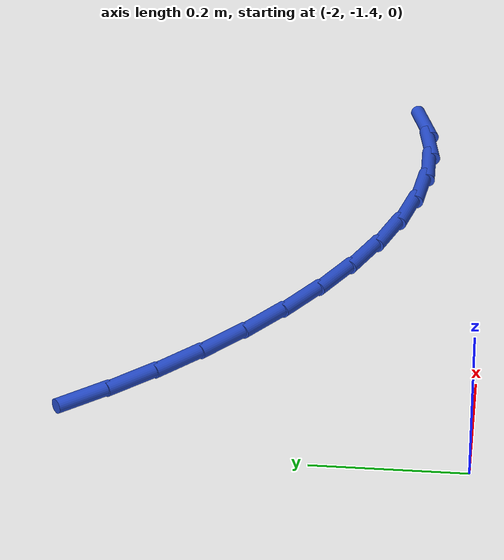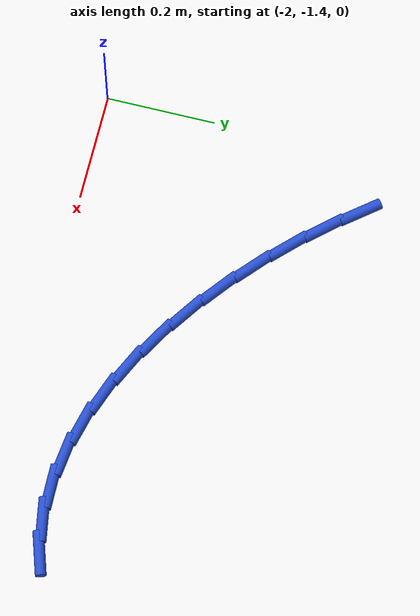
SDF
<sdf version="1.6">
 <world name="default">
  <model name="ground_plane">
   <static>1</static>
   <link name="link">
    <collision name="collision">
     <geometry><plane><normal>0 0 1</normal><size>100 100</size></plane></geometry>
     <surface><friction><ode><mu>100</mu><mu2>50</mu2></ode></friction></surface>
    </collision>
    <visual name="visual">
     <cast_shadows>0</cast_shadows>
     <geometry><plane><normal>0 0 1</normal><size>100 100</size></plane></geometry>
     <material>
      <script><uri>file://media/materials/scripts/gazebo.material</uri><name>Gazebo/WhiteGlow</name></script>
     </material>
    </visual>
   </link>
  </model>
  <model name="line">
   <link name="link_70">
    <pose>-1.8895390461482817 -0.903989645610609 0.01 0 1.57 -0.8922909289799934</pose>
    <collision name="collision">
     <geometry><cylinder><radius>0.01</radius><length>0.08</length></cylinder></geometry>
    </collision>
    <visual name="visual">
     <material>
      <script><name>Gazebo/Blue</name><uri>file://media/materials/scripts/gazebo.material</uri></script>
     </material>
     <geometry><cylinder><radius>0.01</radius><length>0.08</length></cylinder></geometry>
    </visual>
   </link>
   <link name="link_71">
    <pose>-1.8442132063884555 -0.9602117590820116 0.01 0 1.57 -0.8369559492550094</pose>
    <collision name="collision">
     <geometry><cylinder><radius>0.01</radius><length>0.08</length></cylinder></geometry>
    </collision>
    <visual name="visual">
     <material>
      <script><name>Gazebo/Blue</name><uri>file://media/materials/scripts/gazebo.material</uri></script>
     </material>
     <geometry><cylinder><radius>0.01</radius><length>0.08</length></cylinder></geometry>
    </visual>
   </link>
   <link name="link_72">
    <pose>-1.7951177419760063 -1.0146499229677792 0.01 0 1.57 -0.7813351497219727</pose>
    <collision name="collision">
     <geometry><cylinder><radius>0.01</radius><length>0.08</length></cylinder></geometry>
    </collision>
    <visual name="visual">
     <material>
      <script><name>Gazebo/Blue</name><uri>file://media/materials/scripts/gazebo.material</uri></script>
     </material>
     <geometry><cylinder><radius>0.01</radius><length>0.08</length></cylinder></geometry>
    </visual>
   </link>
   <link name="link_73">
    <pose>-1.7427157251807488 -1.0666278403294203 0.01 0 1.57 -0.7239167844364555</pose>
    <collision name="collision">
     <geometry><cylinder><radius>0.01</radius><length>0.08</length></cylinder></geometry>
    </collision>
    <visual name="visual">
     <material>
      <script><name>Gazebo/Blue</name><uri>file://media/materials/scripts/gazebo.material</uri></script>
     </material>
     <geometry><cylinder><radius>0.01</radius><length>0.08</length></cylinder></geometry>
    </visual>
   </link>
   <link name="link_74">
    <pose>-1.687482469653479 -1.115455230522717 0.01 0 1.57 -0.66314945334752</pose>
    <collision name="collision">
     <geometry><cylinder><radius>0.01</radius><length>0.08</length></cylinder></geometry>
    </collision>
    <visual name="visual">
     <material>
      <script><name>Gazebo/Blue</name><uri>file://media/materials/scripts/gazebo.material</uri></script>
     </material>
     <geometry><cylinder><radius>0.01</radius><length>0.08</length></cylinder></geometry>
    </visual>
   </link>
   <link name="link_75">
    <pose>-1.6298932890449969 -1.1604418129034506 0.01 0 1.57 -0.5973610156961918</pose>
    <collision name="collision">
     <geometry><cylinder><radius>0.01</radius><length>0.08</length></cylinder></geometry>
    </collision>
    <visual name="visual">
     <material>
      <script><name>Gazebo/Blue</name><uri>file://media/materials/scripts/gazebo.material</uri></script>
     </material>
     <geometry><cylinder><radius>0.01</radius><length>0.08</length></cylinder></geometry>
    </visual>
   </link>
   <link name="link_76">
    <pose>-1.5704234970060988 -1.2008973068274027 0.01 0 1.57 -0.5246807501971923</pose>
    <collision name="collision">
     <geometry><cylinder><radius>0.01</radius><length>0.08</length></cylinder></geometry>
    </collision>
    <visual name="visual">
     <material>
      <script><name>Gazebo/Blue</name><uri>file://media/materials/scripts/gazebo.material</uri></script>
     </material>
     <geometry><cylinder><radius>0.01</radius><length>0.08</length></cylinder></geometry>
    </visual>
   </link>
   <link name="link_77">
    <pose>-1.5095484071875842 -1.2361314316503547 0.01 0 1.57 -0.4429870457059231</pose>
    <collision name="collision">
     <geometry><cylinder><radius>0.01</radius><length>0.08</length></cylinder></geometry>
    </collision>
    <visual name="visual">
     <material>
      <script><name>Gazebo/Blue</name><uri>file://media/materials/scripts/gazebo.material</uri></script>
     </material>
     <geometry><cylinder><radius>0.01</radius><length>0.08</length></cylinder></geometry>
    </visual>
   </link>
   <link name="link_78">
    <pose>-1.4477433332402503 -1.2654539067280886 0.01 0 1.57 -0.34991444624068774</pose>
    <collision name="collision">
     <geometry><cylinder><radius>0.01</radius><length>0.08</length></cylinder></geometry>
    </collision>
    <visual name="visual">
     <material>
      <script><name>Gazebo/Blue</name><uri>file://media/materials/scripts/gazebo.material</uri></script>
     </material>
     <geometry><cylinder><radius>0.01</radius><length>0.08</length></cylinder></geometry>
    </visual>
   </link>
   <link name="link_79">
    <pose>-1.385483588814896 -1.288174451416385 0.01 0 1.57 -0.24299002360256228</pose>
    <collision name="collision">
     <geometry><cylinder><radius>0.01</radius><length>0.08</length></cylinder></geometry>
    </collision>
    <visual name="visual">
     <material>
      <script><name>Gazebo/Blue</name><uri>file://media/materials/scripts/gazebo.material</uri></script>
     </material>
     <geometry><cylinder><radius>0.01</radius><length>0.08</length></cylinder></geometry>
    </visual>
   </link>
   <link name="link_80">
    <pose>-1.3232444875623186 -1.3036027850710263 0.01 0 1.57 -0.1200142804993633</pose>
    <collision name="collision">
     <geometry><cylinder><radius>0.01</radius><length>0.08</length></cylinder></geometry>
    </collision>
    <visual name="visual">
     <material>
      <script><name>Gazebo/Blue</name><uri>file://media/materials/scripts/gazebo.material</uri></script>
     </material>
     <geometry><cylinder><radius>0.01</radius><length>0.08</length></cylinder></geometry>
    </visual>
   </link>
   <link name="link_81">
    <pose>-1.261501343133317 -1.3110486270477941 0.01 0 1.57 0.02018637253005669</pose>
    <collision name="collision">
     <geometry><cylinder><radius>0.01</radius><length>0.08</length></cylinder></geometry>
    </collision>
    <visual name="visual">
     <material>
      <script><name>Gazebo/Blue</name><uri>file://media/materials/scripts/gazebo.material</uri></script>
     </material>
     <geometry><cylinder><radius>0.01</radius><length>0.08</length></cylinder></geometry>
    </visual>
   </link>
   <link name="link_82">
    <pose>-1.2007294691786887 -1.309821696702469 0.01 0 1.57 0.17247422186036784</pose>
    <collision name="collision">
     <geometry><cylinder><radius>0.01</radius><length>0.08</length></cylinder></geometry>
    </collision>
    <visual name="visual">
     <material>
      <script><name>Gazebo/Blue</name><uri>file://media/materials/scripts/gazebo.material</uri></script>
     </material>
     <geometry><cylinder><radius>0.01</radius><length>0.08</length></cylinder></geometry>
    </visual>
   </link>
   <link name="link_83">
    <pose>-1.1413144326326279 -1.2994712980577403 0.01 0 1.57 0.3121319430901108</pose>
    <collision name="collision">
     <geometry><cylinder><radius>0.01</radius><length>0.08</length></cylinder></geometry>
    </collision>
    <visual name="visual">
     <material>
      <script><name>Gazebo/Blue</name><uri>file://media/materials/scripts/gazebo.material</uri></script>
     </material>
     <geometry><cylinder><radius>0.01</radius><length>0.08</length></cylinder></geometry>
    </visual>
   </link>
  </model>
 </world>
</sdf>
